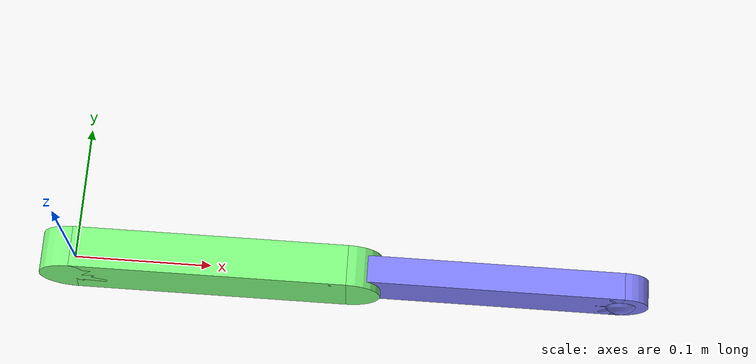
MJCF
<mujoco>

    <option gravity="0 0 -9.8" timestep="0.005"/>

    <asset>
        <texture type="skybox" builtin="gradient" rgb1="1 1 1" rgb2=".6 .6 .6" width="265" height="256"/>
        <material name="green" rgba=".5 .99 .5 1"/>
        <material name="blue" rgba=".5 .5 .99 1"/>
    </asset>

    <worldbody>
        <body pos="0 0 0">
            <body pos = "0 0 0" euler = "90 0 0">
                <joint name="joint0" type="hinge" axis="0 0 1" pos="0 0 0"/>
                <geom type="box" size="0.1 .025 .015" pos="0.1 0 0"  material="green" density="4000"/>
                <geom type="cylinder" size=".025 .015" material="green" mass="0"/>
                <geom type="cylinder" size=".025 .015" material="green" mass="0" pos="0.2 0 0"/>
                <body pos = "0.2 0 0">
                    <joint name="joint1" type="hinge"  axis="0 0 1" pos="0 0 0"/>
                    <geom type="box" size="0.1 .02 .01" material="blue" density="4000" pos="0.1 0 0"/>
                    <geom type="cylinder" size=".02 .01" material="blue" mass="0"/>
                    <geom type="cylinder" size=".02 .01" material="blue" mass="0" pos="0.2 0 0"/>
                    <site name='tip' size='0.015' pos='0.2 0 0' material="blue"/>
                </body>
            </body>
        </body>

    </worldbody>

    <actuator>
        <motor name="tau0" joint="joint0" ctrllimited="true" ctrlrange="-10 10"/>
        <motor name="tau1" joint="joint1" ctrllimited="true" ctrlrange="-10 10"/>
    </actuator>

    <sensor>
        <actuatorfrc name='act_tau0' actuator='tau0'/>
        <actuatorfrc name='act_tau1' actuator='tau1'/>
    </sensor>

    <sensor>
		<framepos objtype="site" objname="tip"/>
	</sensor>

</mujoco>
